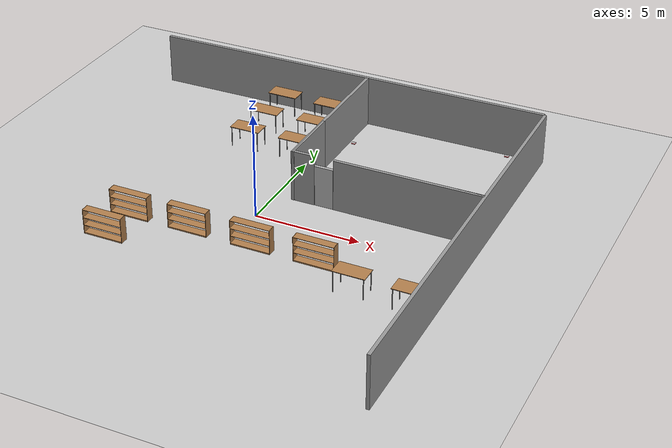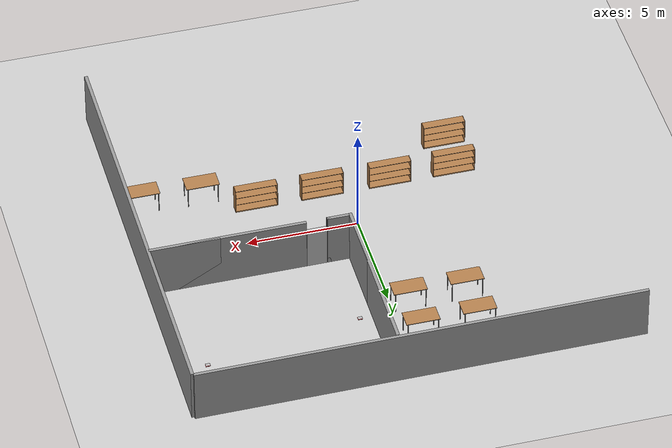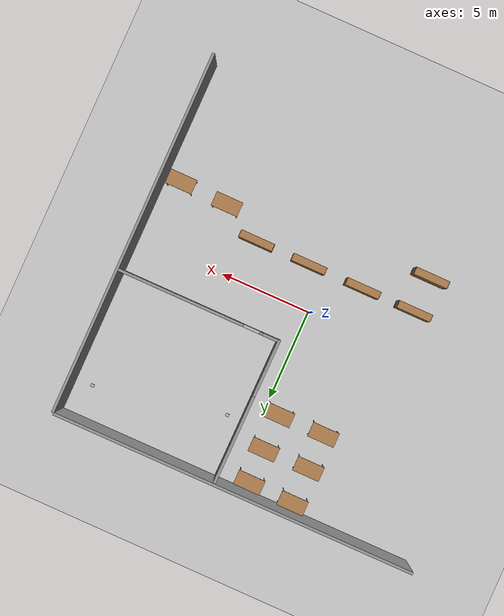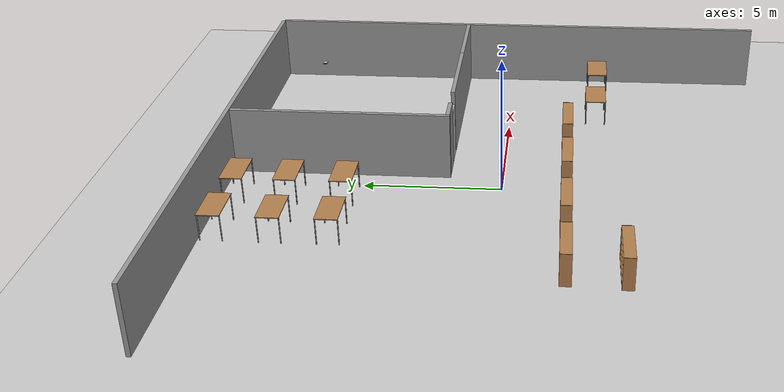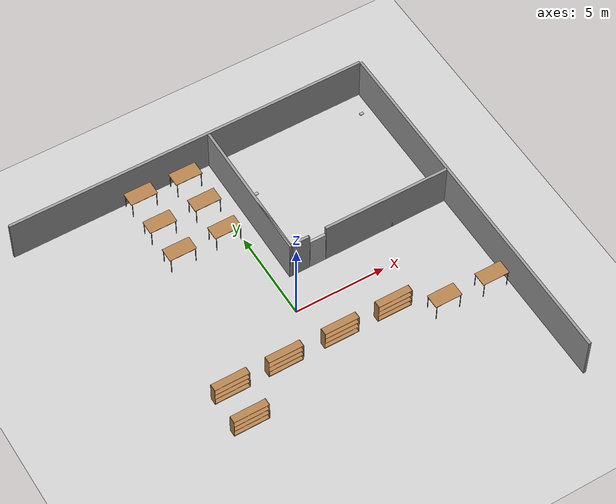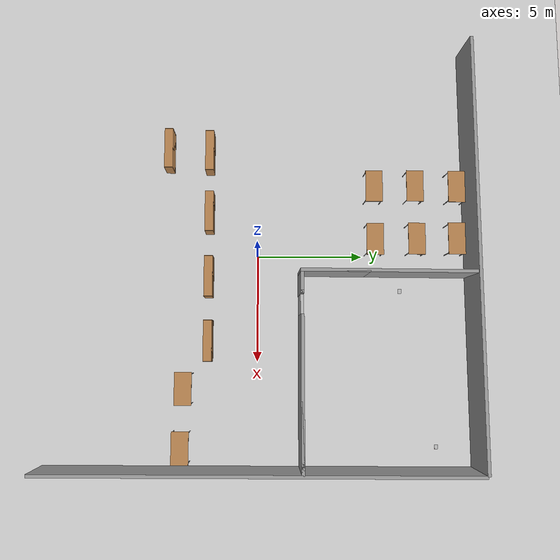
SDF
<sdf version="1.7">
 <world name="default">
  <model name="ground_plane">
   <static>1</static>
   <link name="link">
    <collision name="collision">
     <geometry><plane><normal>0 0 1</normal><size>100 100</size></plane></geometry>
     <surface>
      <contact><collide_bitmask>65535</collide_bitmask></contact>
      <friction><ode><mu>100</mu><mu2>50</mu2></ode></friction>
     </surface>
    </collision>
    <visual name="visual">
     <cast_shadows>0</cast_shadows>
     <geometry><plane><normal>0 0 1</normal><size>100 100</size></plane></geometry>
     <material>
      <script><uri>file://media/materials/scripts/gazebo.material</uri><name>Gazebo/Grey</name></script>
     </material>
    </visual>
   </link>
  </model>
  <model name="wall_20m">
   <pose>10.3668 0.002945 0 0 -0 0</pose>
   <link name="Wall_0">
    <collision name="Wall_0_Collision">
     <geometry><box><size>20 0.15 2.5</size></box></geometry>
     <pose>0 0 1.25 0 -0 0</pose>
    </collision>
    <visual name="Wall_0_Visual">
     <pose>0 0 1.25 0 -0 0</pose>
     <geometry><box><size>20 0.15 2.5</size></box></geometry>
     <material>
      <script><uri>file://media/materials/scripts/gazebo.material</uri><name>Gazebo/Grey</name></script>
      <ambient>1 1 1 1</ambient>
     </material>
     <meta><layer>0</layer></meta>
    </visual>
    <pose>-0.482276 -0 0 0 -0 1.5708</pose>
   </link>
   <static>1</static>
  </model>
  <model name="wall_20m_0">
   <pose>-0.159869 9.52923 0 0 0 -1.56837</pose>
   <link name="Wall_0">
    <collision name="Wall_0_Collision">
     <geometry><box><size>20 0.15 2.5</size></box></geometry>
     <pose>0 0 1.25 0 -0 0</pose>
    </collision>
    <visual name="Wall_0_Visual">
     <pose>0 0 1.25 0 -0 0</pose>
     <geometry><box><size>20 0.15 2.5</size></box></geometry>
     <material>
      <script><uri>file://media/materials/scripts/gazebo.material</uri><name>Gazebo/Grey</name></script>
      <ambient>1 1 1 1</ambient>
     </material>
     <meta><layer>0</layer></meta>
    </visual>
    <pose>-0.482276 -0 0 0 -0 1.5708</pose>
   </link>
   <static>1</static>
  </model>
  <model name="door_1_0">
   <link name="link_0">
    <visual name="visual">
     <pose>0 0 1 0 -0 0</pose>
     <geometry><box><size>0.9 0.15 2</size></box></geometry>
     <material>
      <script>
       <uri>model://door/materials/scripts</uri>
       <uri>model://door/materials/textures</uri>
       <name>door</name>
      </script>
     </material>
    </visual>
    <collision name="collision">
     <pose>0 0 1 0 -0 0</pose>
     <geometry><box><size>0.9 0.15 2</size></box></geometry>
    </collision>
   </link>
   <static>1</static>
   <pose>2.39581 2.01305 0.003522 0 -0 0</pose>
  </model>
  <model name="wall_1m">
   <pose>1.43654 2.00733 0 0 -0 0</pose>
   <link name="Wall_0">
    <collision name="Wall_0_Collision">
     <geometry><box><size>0.16 0.15 2.5</size></box></geometry>
     <pose>0 0 1.25 0 -0 0</pose>
    </collision>
    <visual name="Wall_0_Visual">
     <pose>0 0 1.25 0 -0 0</pose>
     <geometry><box><size>0.16 0.15 2.5</size></box></geometry>
     <material>
      <script><uri>file://media/materials/scripts/gazebo.material</uri><name>Gazebo/Grey</name></script>
      <ambient>1 1 1 1</ambient>
     </material>
     <meta><layer>0</layer></meta>
    </visual>
    <pose>0.42 0 0 0 -0 0</pose>
   </link>
   <link name="Wall_1">
    <collision name="Wall_1_Collision">
     <geometry><box><size>1 0.15 2.5</size></box></geometry>
     <pose>0 0 1.25 0 -0 0</pose>
    </collision>
    <visual name="Wall_1_Visual">
     <pose>0 0 1.25 0 -0 0</pose>
     <geometry><box><size>1 0.15 2.5</size></box></geometry>
     <material>
      <script><uri>file://media/materials/scripts/gazebo.material</uri><name>Gazebo/Grey</name></script>
      <ambient>1 1 1 1</ambient>
     </material>
     <meta><layer>0</layer></meta>
    </visual>
    <pose>0 0 0 0 -0 3.14159</pose>
   </link>
   <static>1</static>
  </model>
  <model name="wall_7m_0">
   <pose>6.35669 2.00921 0 0 -0 0</pose>
   <link name="Wall_0">
    <collision name="Wall_0_Collision">
     <geometry><box><size>3.16 0.15 2.5</size></box></geometry>
     <pose>0 0 1.25 0 -0 0</pose>
    </collision>
    <visual name="Wall_0_Visual">
     <pose>0 0 1.25 0 -0 0</pose>
     <geometry><box><size>3.16 0.15 2.5</size></box></geometry>
     <material>
      <script><uri>file://media/materials/scripts/gazebo.material</uri><name>Gazebo/Grey</name></script>
      <ambient>1 1 1 1</ambient>
     </material>
     <meta><layer>0</layer></meta>
    </visual>
    <pose>1.92 0 0 0 -0 0</pose>
   </link>
   <link name="Wall_1">
    <collision name="Wall_1_Collision">
     <geometry><box><size>7 0.15 2.5</size></box></geometry>
     <pose>0 0 1.25 0 -0 0</pose>
    </collision>
    <visual name="Wall_1_Visual">
     <pose>0 0 1.25 0 -0 0</pose>
     <geometry><box><size>7 0.15 2.5</size></box></geometry>
     <material>
      <script><uri>file://media/materials/scripts/gazebo.material</uri><name>Gazebo/Grey</name></script>
      <ambient>1 1 1 1</ambient>
     </material>
     <meta><layer>0</layer></meta>
    </visual>
    <pose>0 0 0 0 -0 3.14159</pose>
   </link>
   <static>1</static>
  </model>
  <model name="bookshelf_twosided_6">
   <static>1</static>
   <link name="link">
    <inertial><mass>1</mass></inertial>
    <collision name="left_side">
     <pose>0.95 -0.195 0.6 0 -0 0</pose>
     <geometry><box><size>0.02 0.4 1.2</size></box></geometry>
    </collision>
    <visual name="left_side">
     <pose>0.95 -0.195 0.6 0 -0 0</pose>
     <geometry><box><size>0.02 0.4 1.2</size></box></geometry>
     <material>
      <script><uri>file://media/materials/scripts/gazebo.material</uri><name>Gazebo/Wood</name></script>
     </material>
    </visual>
    <collision name="right_side">
     <pose>-0.95 -0.195 0.6 0 -0 0</pose>
     <geometry><box><size>0.02 0.4 1.2</size></box></geometry>
    </collision>
    <visual name="right_side">
     <pose>-0.95 -0.195 0.6 0 -0 0</pose>
     <geometry><box><size>0.02 0.4 1.2</size></box></geometry>
     <material>
      <script><uri>file://media/materials/scripts/gazebo.material</uri><name>Gazebo/Wood</name></script>
     </material>
    </visual>
    <collision name="bottom">
     <pose>0 -0.195 0.03 0 -0 0</pose>
     <geometry><box><size>1.88 0.4 0.06</size></box></geometry>
    </collision>
    <visual name="bottom">
     <pose>0 -0.195 0.03 0 -0 0</pose>
     <geometry><box><size>1.88 0.4 0.06</size></box></geometry>
     <material>
      <script><uri>file://media/materials/scripts/gazebo.material</uri><name>Gazebo/Wood</name></script>
     </material>
    </visual>
    <collision name="top">
     <pose>0 -0.195 1.19 0 -0 0</pose>
     <geometry><box><size>1.88 0.4 0.02</size></box></geometry>
    </collision>
    <visual name="top">
     <pose>0 -0.195 1.19 0 -0 0</pose>
     <geometry><box><size>1.88 0.4 0.02</size></box></geometry>
     <material>
      <script><uri>file://media/materials/scripts/gazebo.material</uri><name>Gazebo/Wood</name></script>
     </material>
    </visual>
    <collision name="low_shelf">
     <pose>0 -0.195 0.43 0 -0 0</pose>
     <geometry><box><size>1.88 0.4 0.02</size></box></geometry>
    </collision>
    <visual name="low_shelf">
     <pose>0 -0.195 0.43 0 -0 0</pose>
     <geometry><box><size>1.88 0.4 0.02</size></box></geometry>
     <material>
      <script><uri>file://media/materials/scripts/gazebo.material</uri><name>Gazebo/Wood</name></script>
     </material>
    </visual>
    <collision name="high_shelf">
     <pose>0 -0.195 0.8 0 -0 0</pose>
     <geometry><box><size>1.88 0.4 0.02</size></box></geometry>
    </collision>
    <visual name="high_shelf">
     <pose>0 -0.195 0.8 0 -0 0</pose>
     <geometry><box><size>1.88 0.4 0.02</size></box></geometry>
     <material>
      <script><uri>file://media/materials/scripts/gazebo.material</uri><name>Gazebo/Wood</name></script>
     </material>
    </visual>
   </link>
   <pose>-5.09321 -4.07593 0 0 -0 0</pose>
  </model>
  <model name="bookshelf_twosided_9">
   <static>1</static>
   <link name="link">
    <inertial><mass>1</mass></inertial>
    <collision name="left_side">
     <pose>0.95 -0.195 0.6 0 -0 0</pose>
     <geometry><box><size>0.02 0.4 1.2</size></box></geometry>
    </collision>
    <visual name="left_side">
     <pose>0.95 -0.195 0.6 0 -0 0</pose>
     <geometry><box><size>0.02 0.4 1.2</size></box></geometry>
     <material>
      <script><uri>file://media/materials/scripts/gazebo.material</uri><name>Gazebo/Wood</name></script>
     </material>
    </visual>
    <collision name="right_side">
     <pose>-0.95 -0.195 0.6 0 -0 0</pose>
     <geometry><box><size>0.02 0.4 1.2</size></box></geometry>
    </collision>
    <visual name="right_side">
     <pose>-0.95 -0.195 0.6 0 -0 0</pose>
     <geometry><box><size>0.02 0.4 1.2</size></box></geometry>
     <material>
      <script><uri>file://media/materials/scripts/gazebo.material</uri><name>Gazebo/Wood</name></script>
     </material>
    </visual>
    <collision name="bottom">
     <pose>0 -0.195 0.03 0 -0 0</pose>
     <geometry><box><size>1.88 0.4 0.06</size></box></geometry>
    </collision>
    <visual name="bottom">
     <pose>0 -0.195 0.03 0 -0 0</pose>
     <geometry><box><size>1.88 0.4 0.06</size></box></geometry>
     <material>
      <script><uri>file://media/materials/scripts/gazebo.material</uri><name>Gazebo/Wood</name></script>
     </material>
    </visual>
    <collision name="top">
     <pose>0 -0.195 1.19 0 -0 0</pose>
     <geometry><box><size>1.88 0.4 0.02</size></box></geometry>
    </collision>
    <visual name="top">
     <pose>0 -0.195 1.19 0 -0 0</pose>
     <geometry><box><size>1.88 0.4 0.02</size></box></geometry>
     <material>
      <script><uri>file://media/materials/scripts/gazebo.material</uri><name>Gazebo/Wood</name></script>
     </material>
    </visual>
    <collision name="low_shelf">
     <pose>0 -0.195 0.43 0 -0 0</pose>
     <geometry><box><size>1.88 0.4 0.02</size></box></geometry>
    </collision>
    <visual name="low_shelf">
     <pose>0 -0.195 0.43 0 -0 0</pose>
     <geometry><box><size>1.88 0.4 0.02</size></box></geometry>
     <material>
      <script><uri>file://media/materials/scripts/gazebo.material</uri><name>Gazebo/Wood</name></script>
     </material>
    </visual>
    <collision name="high_shelf">
     <pose>0 -0.195 0.8 0 -0 0</pose>
     <geometry><box><size>1.88 0.4 0.02</size></box></geometry>
    </collision>
    <visual name="high_shelf">
     <pose>0 -0.195 0.8 0 -0 0</pose>
     <geometry><box><size>1.88 0.4 0.02</size></box></geometry>
     <material>
      <script><uri>file://media/materials/scripts/gazebo.material</uri><name>Gazebo/Wood</name></script>
     </material>
    </visual>
   </link>
   <pose>-4.99287 -2.11922 0 0 -0 0</pose>
  </model>
  <model name="bookshelf_twosided_10">
   <static>1</static>
   <link name="link">
    <inertial><mass>1</mass></inertial>
    <collision name="left_side">
     <pose>0.95 -0.195 0.6 0 -0 0</pose>
     <geometry><box><size>0.02 0.4 1.2</size></box></geometry>
    </collision>
    <visual name="left_side">
     <pose>0.95 -0.195 0.6 0 -0 0</pose>
     <geometry><box><size>0.02 0.4 1.2</size></box></geometry>
     <material>
      <script><uri>file://media/materials/scripts/gazebo.material</uri><name>Gazebo/Wood</name></script>
     </material>
    </visual>
    <collision name="right_side">
     <pose>-0.95 -0.195 0.6 0 -0 0</pose>
     <geometry><box><size>0.02 0.4 1.2</size></box></geometry>
    </collision>
    <visual name="right_side">
     <pose>-0.95 -0.195 0.6 0 -0 0</pose>
     <geometry><box><size>0.02 0.4 1.2</size></box></geometry>
     <material>
      <script><uri>file://media/materials/scripts/gazebo.material</uri><name>Gazebo/Wood</name></script>
     </material>
    </visual>
    <collision name="bottom">
     <pose>0 -0.195 0.03 0 -0 0</pose>
     <geometry><box><size>1.88 0.4 0.06</size></box></geometry>
    </collision>
    <visual name="bottom">
     <pose>0 -0.195 0.03 0 -0 0</pose>
     <geometry><box><size>1.88 0.4 0.06</size></box></geometry>
     <material>
      <script><uri>file://media/materials/scripts/gazebo.material</uri><name>Gazebo/Wood</name></script>
     </material>
    </visual>
    <collision name="top">
     <pose>0 -0.195 1.19 0 -0 0</pose>
     <geometry><box><size>1.88 0.4 0.02</size></box></geometry>
    </collision>
    <visual name="top">
     <pose>0 -0.195 1.19 0 -0 0</pose>
     <geometry><box><size>1.88 0.4 0.02</size></box></geometry>
     <material>
      <script><uri>file://media/materials/scripts/gazebo.material</uri><name>Gazebo/Wood</name></script>
     </material>
    </visual>
    <collision name="low_shelf">
     <pose>0 -0.195 0.43 0 -0 0</pose>
     <geometry><box><size>1.88 0.4 0.02</size></box></geometry>
    </collision>
    <visual name="low_shelf">
     <pose>0 -0.195 0.43 0 -0 0</pose>
     <geometry><box><size>1.88 0.4 0.02</size></box></geometry>
     <material>
      <script><uri>file://media/materials/scripts/gazebo.material</uri><name>Gazebo/Wood</name></script>
     </material>
    </visual>
    <collision name="high_shelf">
     <pose>0 -0.195 0.8 0 -0 0</pose>
     <geometry><box><size>1.88 0.4 0.02</size></box></geometry>
    </collision>
    <visual name="high_shelf">
     <pose>0 -0.195 0.8 0 -0 0</pose>
     <geometry><box><size>1.88 0.4 0.02</size></box></geometry>
     <material>
      <script><uri>file://media/materials/scripts/gazebo.material</uri><name>Gazebo/Wood</name></script>
     </material>
    </visual>
   </link>
   <pose>-2.05301 -2.11044 0 0 -0 0</pose>
  </model>
  <model name="biscuit_box">
   <link name="link">
    <pose>0 0 0.025 0 -0 0</pose>
    <visual name="visual">
     <geometry><box><size>0.2 0.15 0.05</size></box></geometry>
     <material>
      <ambient>0.423 0.019 0.035 1</ambient>
      <diffuse>0.423 0.019 0.035 1</diffuse>
      <specular>0.01 0.01 0.01 1</specular>
      <emissive>0 0 0 1</emissive>
     </material>
    </visual>
    <collision name="collision"><geometry><box><size>0.1 0.1 0.15</size></box></geometry></collision>
   </link>
   <link name="link_1">
    <pose>0 0 0.05 0 -0 0</pose>
    <visual name="visual">
     <geometry><box><size>0.2 0.15 0.001</size></box></geometry>
     <material>
      <script>
       <uri>model://biscuit_box/materials/scripts</uri>
       <uri>model://biscuit_box/materials/textures</uri>
       <name>biscuit_pat</name>
      </script>
     </material>
    </visual>
    <collision name="collision"><geometry><box><size>0.1 0.1 0.15</size></box></geometry></collision>
   </link>
   <static>1</static>
   <pose>8.7753 8.10875 1.0005 0 -0 0</pose>
  </model>
  <model name="biscuit_box_0">
   <link name="link">
    <pose>0 0 0.025 0 -0 0</pose>
    <visual name="visual">
     <geometry><box><size>0.2 0.15 0.05</size></box></geometry>
     <material>
      <ambient>0.423 0.019 0.035 1</ambient>
      <diffuse>0.423 0.019 0.035 1</diffuse>
      <specular>0.01 0.01 0.01 1</specular>
      <emissive>0 0 0 1</emissive>
     </material>
    </visual>
    <collision name="collision"><geometry><box><size>0.1 0.1 0.15</size></box></geometry></collision>
   </link>
   <link name="link_1">
    <pose>0 0 0.05 0 -0 0</pose>
    <visual name="visual">
     <geometry><box><size>0.2 0.15 0.001</size></box></geometry>
     <material>
      <script>
       <uri>model://biscuit_box/materials/scripts</uri>
       <uri>model://biscuit_box/materials/textures</uri>
       <name>biscuit_pat</name>
      </script>
     </material>
    </visual>
    <collision name="collision"><geometry><box><size>0.1 0.1 0.15</size></box></geometry></collision>
   </link>
   <static>1</static>
   <pose>1.7066 6.66984 0.707256 0 -0 0</pose>
  </model>
  <model name="wall_8m">
   <pose>0.894817 5.92497 0 0 0 -1.5771</pose>
   <link name="Wall_0">
    <collision name="Wall_0_Collision">
     <geometry><box><size>3.16 0.15 2.5</size></box></geometry>
     <pose>0 0 1.25 0 -0 0</pose>
    </collision>
    <visual name="Wall_0_Visual">
     <pose>0 0 1.25 0 -0 0</pose>
     <geometry><box><size>3.16 0.15 2.5</size></box></geometry>
     <material>
      <script><uri>file://media/materials/scripts/gazebo.material</uri><name>Gazebo/Grey</name></script>
      <ambient>1 1 1 1</ambient>
     </material>
     <meta><layer>0</layer></meta>
    </visual>
    <pose>2.42 0 0 0 -0 0</pose>
   </link>
   <link name="Wall_1">
    <collision name="Wall_1_Collision">
     <geometry><box><size>8 0.15 2.5</size></box></geometry>
     <pose>0 0 1.25 0 -0 0</pose>
    </collision>
    <visual name="Wall_1_Visual">
     <pose>0 0 1.25 0 -0 0</pose>
     <geometry><box><size>8 0.15 2.5</size></box></geometry>
     <material>
      <script><uri>file://media/materials/scripts/gazebo.material</uri><name>Gazebo/Grey</name></script>
      <ambient>1 1 1 1</ambient>
     </material>
     <meta><layer>0</layer></meta>
    </visual>
    <pose>0 0 0 0 -0 3.14159</pose>
   </link>
   <static>1</static>
  </model>
  <model name="table_clone_1">
   <static>1</static>
   <link name="link">
    <collision name="surface">
     <pose>0 0 1 0 -0 0</pose>
     <geometry><box><size>1.5 0.8 0.03</size></box></geometry>
     <surface><friction><ode><mu>0.6</mu><mu2>0.6</mu2></ode></friction></surface>
    </collision>
    <visual name="visual1">
     <pose>0 0 1 0 -0 0</pose>
     <geometry><box><size>1.5 0.8 0.03</size></box></geometry>
     <material>
      <script><uri>file://media/materials/scripts/gazebo.material</uri><name>Gazebo/Wood</name></script>
     </material>
    </visual>
    <collision name="front_left_leg">
     <pose>0.68 0.38 0.5 0 -0 0</pose>
     <geometry><cylinder><radius>0.02</radius><length>1</length></cylinder></geometry>
    </collision>
    <visual name="front_left_leg">
     <pose>0.68 0.38 0.5 0 -0 0</pose>
     <geometry><cylinder><radius>0.02</radius><length>1</length></cylinder></geometry>
     <material>
      <script><uri>file://media/materials/scripts/gazebo.material</uri><name>Gazebo/Grey</name></script>
     </material>
    </visual>
    <collision name="front_right_leg">
     <pose>0.68 -0.38 0.5 0 -0 0</pose>
     <geometry><cylinder><radius>0.02</radius><length>1</length></cylinder></geometry>
    </collision>
    <visual name="front_right_leg">
     <pose>0.68 -0.38 0.5 0 -0 0</pose>
     <geometry><cylinder><radius>0.02</radius><length>1</length></cylinder></geometry>
     <material>
      <script><uri>file://media/materials/scripts/gazebo.material</uri><name>Gazebo/Grey</name></script>
     </material>
    </visual>
    <collision name="back_right_leg">
     <pose>-0.68 -0.38 0.5 0 -0 0</pose>
     <geometry><cylinder><radius>0.02</radius><length>1</length></cylinder></geometry>
    </collision>
    <visual name="back_right_leg">
     <pose>-0.68 -0.38 0.5 0 -0 0</pose>
     <geometry><cylinder><radius>0.02</radius><length>1</length></cylinder></geometry>
     <material>
      <script><uri>file://media/materials/scripts/gazebo.material</uri><name>Gazebo/Grey</name></script>
     </material>
    </visual>
    <collision name="back_left_leg">
     <pose>-0.68 0.38 0.5 0 -0 0</pose>
     <geometry><cylinder><radius>0.02</radius><length>1</length></cylinder></geometry>
    </collision>
    <visual name="back_left_leg">
     <pose>-0.68 0.38 0.5 0 -0 0</pose>
     <geometry><cylinder><radius>0.02</radius><length>1</length></cylinder></geometry>
     <material>
      <script><uri>file://media/materials/scripts/gazebo.material</uri><name>Gazebo/Grey</name></script>
     </material>
    </visual>
   </link>
   <pose>-3.30649 5.52697 0 0 -0 3.13908</pose>
  </model>
  <model name="table_clone_2">
   <static>1</static>
   <link name="link">
    <collision name="surface">
     <pose>0 0 1 0 -0 0</pose>
     <geometry><box><size>1.5 0.8 0.03</size></box></geometry>
     <surface><friction><ode><mu>0.6</mu><mu2>0.6</mu2></ode></friction></surface>
    </collision>
    <visual name="visual1">
     <pose>0 0 1 0 -0 0</pose>
     <geometry><box><size>1.5 0.8 0.03</size></box></geometry>
     <material>
      <script><uri>file://media/materials/scripts/gazebo.material</uri><name>Gazebo/Wood</name></script>
     </material>
    </visual>
    <collision name="front_left_leg">
     <pose>0.68 0.38 0.5 0 -0 0</pose>
     <geometry><cylinder><radius>0.02</radius><length>1</length></cylinder></geometry>
    </collision>
    <visual name="front_left_leg">
     <pose>0.68 0.38 0.5 0 -0 0</pose>
     <geometry><cylinder><radius>0.02</radius><length>1</length></cylinder></geometry>
     <material>
      <script><uri>file://media/materials/scripts/gazebo.material</uri><name>Gazebo/Grey</name></script>
     </material>
    </visual>
    <collision name="front_right_leg">
     <pose>0.68 -0.38 0.5 0 -0 0</pose>
     <geometry><cylinder><radius>0.02</radius><length>1</length></cylinder></geometry>
    </collision>
    <visual name="front_right_leg">
     <pose>0.68 -0.38 0.5 0 -0 0</pose>
     <geometry><cylinder><radius>0.02</radius><length>1</length></cylinder></geometry>
     <material>
      <script><uri>file://media/materials/scripts/gazebo.material</uri><name>Gazebo/Grey</name></script>
     </material>
    </visual>
    <collision name="back_right_leg">
     <pose>-0.68 -0.38 0.5 0 -0 0</pose>
     <geometry><cylinder><radius>0.02</radius><length>1</length></cylinder></geometry>
    </collision>
    <visual name="back_right_leg">
     <pose>-0.68 -0.38 0.5 0 -0 0</pose>
     <geometry><cylinder><radius>0.02</radius><length>1</length></cylinder></geometry>
     <material>
      <script><uri>file://media/materials/scripts/gazebo.material</uri><name>Gazebo/Grey</name></script>
     </material>
    </visual>
    <collision name="back_left_leg">
     <pose>-0.68 0.38 0.5 0 -0 0</pose>
     <geometry><cylinder><radius>0.02</radius><length>1</length></cylinder></geometry>
    </collision>
    <visual name="back_left_leg">
     <pose>-0.68 0.38 0.5 0 -0 0</pose>
     <geometry><cylinder><radius>0.02</radius><length>1</length></cylinder></geometry>
     <material>
      <script><uri>file://media/materials/scripts/gazebo.material</uri><name>Gazebo/Grey</name></script>
     </material>
    </visual>
   </link>
   <pose>-3.31766 7.47222 0 0 -0 3.13908</pose>
  </model>
  <model name="table_clone_3">
   <static>1</static>
   <link name="link">
    <collision name="surface">
     <pose>0 0 1 0 -0 0</pose>
     <geometry><box><size>1.5 0.8 0.03</size></box></geometry>
     <surface><friction><ode><mu>0.6</mu><mu2>0.6</mu2></ode></friction></surface>
    </collision>
    <visual name="visual1">
     <pose>0 0 1 0 -0 0</pose>
     <geometry><box><size>1.5 0.8 0.03</size></box></geometry>
     <material>
      <script><uri>file://media/materials/scripts/gazebo.material</uri><name>Gazebo/Wood</name></script>
     </material>
    </visual>
    <collision name="front_left_leg">
     <pose>0.68 0.38 0.5 0 -0 0</pose>
     <geometry><cylinder><radius>0.02</radius><length>1</length></cylinder></geometry>
    </collision>
    <visual name="front_left_leg">
     <pose>0.68 0.38 0.5 0 -0 0</pose>
     <geometry><cylinder><radius>0.02</radius><length>1</length></cylinder></geometry>
     <material>
      <script><uri>file://media/materials/scripts/gazebo.material</uri><name>Gazebo/Grey</name></script>
     </material>
    </visual>
    <collision name="front_right_leg">
     <pose>0.68 -0.38 0.5 0 -0 0</pose>
     <geometry><cylinder><radius>0.02</radius><length>1</length></cylinder></geometry>
    </collision>
    <visual name="front_right_leg">
     <pose>0.68 -0.38 0.5 0 -0 0</pose>
     <geometry><cylinder><radius>0.02</radius><length>1</length></cylinder></geometry>
     <material>
      <script><uri>file://media/materials/scripts/gazebo.material</uri><name>Gazebo/Grey</name></script>
     </material>
    </visual>
    <collision name="back_right_leg">
     <pose>-0.68 -0.38 0.5 0 -0 0</pose>
     <geometry><cylinder><radius>0.02</radius><length>1</length></cylinder></geometry>
    </collision>
    <visual name="back_right_leg">
     <pose>-0.68 -0.38 0.5 0 -0 0</pose>
     <geometry><cylinder><radius>0.02</radius><length>1</length></cylinder></geometry>
     <material>
      <script><uri>file://media/materials/scripts/gazebo.material</uri><name>Gazebo/Grey</name></script>
     </material>
    </visual>
    <collision name="back_left_leg">
     <pose>-0.68 0.38 0.5 0 -0 0</pose>
     <geometry><cylinder><radius>0.02</radius><length>1</length></cylinder></geometry>
    </collision>
    <visual name="back_left_leg">
     <pose>-0.68 0.38 0.5 0 -0 0</pose>
     <geometry><cylinder><radius>0.02</radius><length>1</length></cylinder></geometry>
     <material>
      <script><uri>file://media/materials/scripts/gazebo.material</uri><name>Gazebo/Grey</name></script>
     </material>
    </visual>
   </link>
   <pose>-3.29329 9.45341 0 0 -0 3.13908</pose>
  </model>
  <model name="table_clone_4">
   <static>1</static>
   <link name="link">
    <collision name="surface">
     <pose>0 0 1 0 -0 0</pose>
     <geometry><box><size>1.5 0.8 0.03</size></box></geometry>
     <surface><friction><ode><mu>0.6</mu><mu2>0.6</mu2></ode></friction></surface>
    </collision>
    <visual name="visual1">
     <pose>0 0 1 0 -0 0</pose>
     <geometry><box><size>1.5 0.8 0.03</size></box></geometry>
     <material>
      <script><uri>file://media/materials/scripts/gazebo.material</uri><name>Gazebo/Wood</name></script>
     </material>
    </visual>
    <collision name="front_left_leg">
     <pose>0.68 0.38 0.5 0 -0 0</pose>
     <geometry><cylinder><radius>0.02</radius><length>1</length></cylinder></geometry>
    </collision>
    <visual name="front_left_leg">
     <pose>0.68 0.38 0.5 0 -0 0</pose>
     <geometry><cylinder><radius>0.02</radius><length>1</length></cylinder></geometry>
     <material>
      <script><uri>file://media/materials/scripts/gazebo.material</uri><name>Gazebo/Grey</name></script>
     </material>
    </visual>
    <collision name="front_right_leg">
     <pose>0.68 -0.38 0.5 0 -0 0</pose>
     <geometry><cylinder><radius>0.02</radius><length>1</length></cylinder></geometry>
    </collision>
    <visual name="front_right_leg">
     <pose>0.68 -0.38 0.5 0 -0 0</pose>
     <geometry><cylinder><radius>0.02</radius><length>1</length></cylinder></geometry>
     <material>
      <script><uri>file://media/materials/scripts/gazebo.material</uri><name>Gazebo/Grey</name></script>
     </material>
    </visual>
    <collision name="back_right_leg">
     <pose>-0.68 -0.38 0.5 0 -0 0</pose>
     <geometry><cylinder><radius>0.02</radius><length>1</length></cylinder></geometry>
    </collision>
    <visual name="back_right_leg">
     <pose>-0.68 -0.38 0.5 0 -0 0</pose>
     <geometry><cylinder><radius>0.02</radius><length>1</length></cylinder></geometry>
     <material>
      <script><uri>file://media/materials/scripts/gazebo.material</uri><name>Gazebo/Grey</name></script>
     </material>
    </visual>
    <collision name="back_left_leg">
     <pose>-0.68 0.38 0.5 0 -0 0</pose>
     <geometry><cylinder><radius>0.02</radius><length>1</length></cylinder></geometry>
    </collision>
    <visual name="back_left_leg">
     <pose>-0.68 0.38 0.5 0 -0 0</pose>
     <geometry><cylinder><radius>0.02</radius><length>1</length></cylinder></geometry>
     <material>
      <script><uri>file://media/materials/scripts/gazebo.material</uri><name>Gazebo/Grey</name></script>
     </material>
    </visual>
   </link>
   <pose>-0.762303 5.5358 0 0 -0 3.13908</pose>
  </model>
  <model name="table_clone_5">
   <static>1</static>
   <link name="link">
    <collision name="surface">
     <pose>0 0 1 0 -0 0</pose>
     <geometry><box><size>1.5 0.8 0.03</size></box></geometry>
     <surface><friction><ode><mu>0.6</mu><mu2>0.6</mu2></ode></friction></surface>
    </collision>
    <visual name="visual1">
     <pose>0 0 1 0 -0 0</pose>
     <geometry><box><size>1.5 0.8 0.03</size></box></geometry>
     <material>
      <script><uri>file://media/materials/scripts/gazebo.material</uri><name>Gazebo/Wood</name></script>
     </material>
    </visual>
    <collision name="front_left_leg">
     <pose>0.68 0.38 0.5 0 -0 0</pose>
     <geometry><cylinder><radius>0.02</radius><length>1</length></cylinder></geometry>
    </collision>
    <visual name="front_left_leg">
     <pose>0.68 0.38 0.5 0 -0 0</pose>
     <geometry><cylinder><radius>0.02</radius><length>1</length></cylinder></geometry>
     <material>
      <script><uri>file://media/materials/scripts/gazebo.material</uri><name>Gazebo/Grey</name></script>
     </material>
    </visual>
    <collision name="front_right_leg">
     <pose>0.68 -0.38 0.5 0 -0 0</pose>
     <geometry><cylinder><radius>0.02</radius><length>1</length></cylinder></geometry>
    </collision>
    <visual name="front_right_leg">
     <pose>0.68 -0.38 0.5 0 -0 0</pose>
     <geometry><cylinder><radius>0.02</radius><length>1</length></cylinder></geometry>
     <material>
      <script><uri>file://media/materials/scripts/gazebo.material</uri><name>Gazebo/Grey</name></script>
     </material>
    </visual>
    <collision name="back_right_leg">
     <pose>-0.68 -0.38 0.5 0 -0 0</pose>
     <geometry><cylinder><radius>0.02</radius><length>1</length></cylinder></geometry>
    </collision>
    <visual name="back_right_leg">
     <pose>-0.68 -0.38 0.5 0 -0 0</pose>
     <geometry><cylinder><radius>0.02</radius><length>1</length></cylinder></geometry>
     <material>
      <script><uri>file://media/materials/scripts/gazebo.material</uri><name>Gazebo/Grey</name></script>
     </material>
    </visual>
    <collision name="back_left_leg">
     <pose>-0.68 0.38 0.5 0 -0 0</pose>
     <geometry><cylinder><radius>0.02</radius><length>1</length></cylinder></geometry>
    </collision>
    <visual name="back_left_leg">
     <pose>-0.68 0.38 0.5 0 -0 0</pose>
     <geometry><cylinder><radius>0.02</radius><length>1</length></cylinder></geometry>
     <material>
      <script><uri>file://media/materials/scripts/gazebo.material</uri><name>Gazebo/Grey</name></script>
     </material>
    </visual>
   </link>
   <pose>-0.774716 7.50629 0 0 -0 3.13908</pose>
  </model>
  <model name="table_clone_6">
   <static>1</static>
   <link name="link">
    <collision name="surface">
     <pose>0 0 1 0 -0 0</pose>
     <geometry><box><size>1.5 0.8 0.03</size></box></geometry>
     <surface><friction><ode><mu>0.6</mu><mu2>0.6</mu2></ode></friction></surface>
    </collision>
    <visual name="visual1">
     <pose>0 0 1 0 -0 0</pose>
     <geometry><box><size>1.5 0.8 0.03</size></box></geometry>
     <material>
      <script><uri>file://media/materials/scripts/gazebo.material</uri><name>Gazebo/Wood</name></script>
     </material>
    </visual>
    <collision name="front_left_leg">
     <pose>0.68 0.38 0.5 0 -0 0</pose>
     <geometry><cylinder><radius>0.02</radius><length>1</length></cylinder></geometry>
    </collision>
    <visual name="front_left_leg">
     <pose>0.68 0.38 0.5 0 -0 0</pose>
     <geometry><cylinder><radius>0.02</radius><length>1</length></cylinder></geometry>
     <material>
      <script><uri>file://media/materials/scripts/gazebo.material</uri><name>Gazebo/Grey</name></script>
     </material>
    </visual>
    <collision name="front_right_leg">
     <pose>0.68 -0.38 0.5 0 -0 0</pose>
     <geometry><cylinder><radius>0.02</radius><length>1</length></cylinder></geometry>
    </collision>
    <visual name="front_right_leg">
     <pose>0.68 -0.38 0.5 0 -0 0</pose>
     <geometry><cylinder><radius>0.02</radius><length>1</length></cylinder></geometry>
     <material>
      <script><uri>file://media/materials/scripts/gazebo.material</uri><name>Gazebo/Grey</name></script>
     </material>
    </visual>
    <collision name="back_right_leg">
     <pose>-0.68 -0.38 0.5 0 -0 0</pose>
     <geometry><cylinder><radius>0.02</radius><length>1</length></cylinder></geometry>
    </collision>
    <visual name="back_right_leg">
     <pose>-0.68 -0.38 0.5 0 -0 0</pose>
     <geometry><cylinder><radius>0.02</radius><length>1</length></cylinder></geometry>
     <material>
      <script><uri>file://media/materials/scripts/gazebo.material</uri><name>Gazebo/Grey</name></script>
     </material>
    </visual>
    <collision name="back_left_leg">
     <pose>-0.68 0.38 0.5 0 -0 0</pose>
     <geometry><cylinder><radius>0.02</radius><length>1</length></cylinder></geometry>
    </collision>
    <visual name="back_left_leg">
     <pose>-0.68 0.38 0.5 0 -0 0</pose>
     <geometry><cylinder><radius>0.02</radius><length>1</length></cylinder></geometry>
     <material>
      <script><uri>file://media/materials/scripts/gazebo.material</uri><name>Gazebo/Grey</name></script>
     </material>
    </visual>
   </link>
   <pose>-0.785479 9.39171 0 0 -0 3.13908</pose>
  </model>
  <model name="bookshelf_twosided_11_clone_0_clone">
   <static>1</static>
   <link name="link">
    <inertial><mass>1</mass></inertial>
    <collision name="left_side">
     <pose>0.95 -0.195 0.6 0 -0 0</pose>
     <geometry><box><size>0.02 0.4 1.2</size></box></geometry>
    </collision>
    <visual name="left_side">
     <pose>0.95 -0.195 0.6 0 -0 0</pose>
     <geometry><box><size>0.02 0.4 1.2</size></box></geometry>
     <material>
      <script><uri>file://media/materials/scripts/gazebo.material</uri><name>Gazebo/Wood</name></script>
     </material>
    </visual>
    <collision name="right_side">
     <pose>-0.95 -0.195 0.6 0 -0 0</pose>
     <geometry><box><size>0.02 0.4 1.2</size></box></geometry>
    </collision>
    <visual name="right_side">
     <pose>-0.95 -0.195 0.6 0 -0 0</pose>
     <geometry><box><size>0.02 0.4 1.2</size></box></geometry>
     <material>
      <script><uri>file://media/materials/scripts/gazebo.material</uri><name>Gazebo/Wood</name></script>
     </material>
    </visual>
    <collision name="bottom">
     <pose>0 -0.195 0.03 0 -0 0</pose>
     <geometry><box><size>1.88 0.4 0.06</size></box></geometry>
    </collision>
    <visual name="bottom">
     <pose>0 -0.195 0.03 0 -0 0</pose>
     <geometry><box><size>1.88 0.4 0.06</size></box></geometry>
     <material>
      <script><uri>file://media/materials/scripts/gazebo.material</uri><name>Gazebo/Wood</name></script>
     </material>
    </visual>
    <collision name="top">
     <pose>0 -0.195 1.19 0 -0 0</pose>
     <geometry><box><size>1.88 0.4 0.02</size></box></geometry>
    </collision>
    <visual name="top">
     <pose>0 -0.195 1.19 0 -0 0</pose>
     <geometry><box><size>1.88 0.4 0.02</size></box></geometry>
     <material>
      <script><uri>file://media/materials/scripts/gazebo.material</uri><name>Gazebo/Wood</name></script>
     </material>
    </visual>
    <collision name="low_shelf">
     <pose>0 -0.195 0.43 0 -0 0</pose>
     <geometry><box><size>1.88 0.4 0.02</size></box></geometry>
    </collision>
    <visual name="low_shelf">
     <pose>0 -0.195 0.43 0 -0 0</pose>
     <geometry><box><size>1.88 0.4 0.02</size></box></geometry>
     <material>
      <script><uri>file://media/materials/scripts/gazebo.material</uri><name>Gazebo/Wood</name></script>
     </material>
    </visual>
    <collision name="high_shelf">
     <pose>0 -0.195 0.8 0 -0 0</pose>
     <geometry><box><size>1.88 0.4 0.02</size></box></geometry>
    </collision>
    <visual name="high_shelf">
     <pose>0 -0.195 0.8 0 -0 0</pose>
     <geometry><box><size>1.88 0.4 0.02</size></box></geometry>
     <material>
      <script><uri>file://media/materials/scripts/gazebo.material</uri><name>Gazebo/Wood</name></script>
     </material>
    </visual>
   </link>
   <pose>1.03775 -2.50599 0 0 -0 3.13857</pose>
  </model>
  <model name="table_clone_0_clone_3">
   <static>1</static>
   <link name="link">
    <collision name="surface">
     <pose>0 0 1 0 -0 0</pose>
     <geometry><box><size>1.5 0.8 0.03</size></box></geometry>
     <surface><friction><ode><mu>0.6</mu><mu2>0.6</mu2></ode></friction></surface>
    </collision>
    <visual name="visual1">
     <pose>0 0 1 0 -0 0</pose>
     <geometry><box><size>1.5 0.8 0.03</size></box></geometry>
     <material>
      <script><uri>file://media/materials/scripts/gazebo.material</uri><name>Gazebo/Wood</name></script>
     </material>
    </visual>
    <collision name="front_left_leg">
     <pose>0.68 0.38 0.5 0 -0 0</pose>
     <geometry><cylinder><radius>0.02</radius><length>1</length></cylinder></geometry>
    </collision>
    <visual name="front_left_leg">
     <pose>0.68 0.38 0.5 0 -0 0</pose>
     <geometry><cylinder><radius>0.02</radius><length>1</length></cylinder></geometry>
     <material>
      <script><uri>file://media/materials/scripts/gazebo.material</uri><name>Gazebo/Grey</name></script>
     </material>
    </visual>
    <collision name="front_right_leg">
     <pose>0.68 -0.38 0.5 0 -0 0</pose>
     <geometry><cylinder><radius>0.02</radius><length>1</length></cylinder></geometry>
    </collision>
    <visual name="front_right_leg">
     <pose>0.68 -0.38 0.5 0 -0 0</pose>
     <geometry><cylinder><radius>0.02</radius><length>1</length></cylinder></geometry>
     <material>
      <script><uri>file://media/materials/scripts/gazebo.material</uri><name>Gazebo/Grey</name></script>
     </material>
    </visual>
    <collision name="back_right_leg">
     <pose>-0.68 -0.38 0.5 0 -0 0</pose>
     <geometry><cylinder><radius>0.02</radius><length>1</length></cylinder></geometry>
    </collision>
    <visual name="back_right_leg">
     <pose>-0.68 -0.38 0.5 0 -0 0</pose>
     <geometry><cylinder><radius>0.02</radius><length>1</length></cylinder></geometry>
     <material>
      <script><uri>file://media/materials/scripts/gazebo.material</uri><name>Gazebo/Grey</name></script>
     </material>
    </visual>
    <collision name="back_left_leg">
     <pose>-0.68 0.38 0.5 0 -0 0</pose>
     <geometry><cylinder><radius>0.02</radius><length>1</length></cylinder></geometry>
    </collision>
    <visual name="back_left_leg">
     <pose>-0.68 0.38 0.5 0 -0 0</pose>
     <geometry><cylinder><radius>0.02</radius><length>1</length></cylinder></geometry>
     <material>
      <script><uri>file://media/materials/scripts/gazebo.material</uri><name>Gazebo/Grey</name></script>
     </material>
    </visual>
   </link>
   <pose>6.2399 -3.42029 0 0 -0 3.13908</pose>
  </model>
  <model name="table_clone_0_clone_4">
   <static>1</static>
   <link name="link">
    <collision name="surface">
     <pose>0 0 1 0 -0 0</pose>
     <geometry><box><size>1.5 0.8 0.03</size></box></geometry>
     <surface><friction><ode><mu>0.6</mu><mu2>0.6</mu2></ode></friction></surface>
    </collision>
    <visual name="visual1">
     <pose>0 0 1 0 -0 0</pose>
     <geometry><box><size>1.5 0.8 0.03</size></box></geometry>
     <material>
      <script><uri>file://media/materials/scripts/gazebo.material</uri><name>Gazebo/Wood</name></script>
     </material>
    </visual>
    <collision name="front_left_leg">
     <pose>0.68 0.38 0.5 0 -0 0</pose>
     <geometry><cylinder><radius>0.02</radius><length>1</length></cylinder></geometry>
    </collision>
    <visual name="front_left_leg">
     <pose>0.68 0.38 0.5 0 -0 0</pose>
     <geometry><cylinder><radius>0.02</radius><length>1</length></cylinder></geometry>
     <material>
      <script><uri>file://media/materials/scripts/gazebo.material</uri><name>Gazebo/Grey</name></script>
     </material>
    </visual>
    <collision name="front_right_leg">
     <pose>0.68 -0.38 0.5 0 -0 0</pose>
     <geometry><cylinder><radius>0.02</radius><length>1</length></cylinder></geometry>
    </collision>
    <visual name="front_right_leg">
     <pose>0.68 -0.38 0.5 0 -0 0</pose>
     <geometry><cylinder><radius>0.02</radius><length>1</length></cylinder></geometry>
     <material>
      <script><uri>file://media/materials/scripts/gazebo.material</uri><name>Gazebo/Grey</name></script>
     </material>
    </visual>
    <collision name="back_right_leg">
     <pose>-0.68 -0.38 0.5 0 -0 0</pose>
     <geometry><cylinder><radius>0.02</radius><length>1</length></cylinder></geometry>
    </collision>
    <visual name="back_right_leg">
     <pose>-0.68 -0.38 0.5 0 -0 0</pose>
     <geometry><cylinder><radius>0.02</radius><length>1</length></cylinder></geometry>
     <material>
      <script><uri>file://media/materials/scripts/gazebo.material</uri><name>Gazebo/Grey</name></script>
     </material>
    </visual>
    <collision name="back_left_leg">
     <pose>-0.68 0.38 0.5 0 -0 0</pose>
     <geometry><cylinder><radius>0.02</radius><length>1</length></cylinder></geometry>
    </collision>
    <visual name="back_left_leg">
     <pose>-0.68 0.38 0.5 0 -0 0</pose>
     <geometry><cylinder><radius>0.02</radius><length>1</length></cylinder></geometry>
     <material>
      <script><uri>file://media/materials/scripts/gazebo.material</uri><name>Gazebo/Grey</name></script>
     </material>
    </visual>
   </link>
   <pose>8.90772 -3.51746 0 0 -0 3.13908</pose>
  </model>
  <model name="bookshelf_twosided_11_clone_0_clone_clone">
   <static>1</static>
   <link name="link">
    <inertial><mass>1</mass></inertial>
    <collision name="left_side">
     <pose>0.95 -0.195 0.6 0 -0 0</pose>
     <geometry><box><size>0.02 0.4 1.2</size></box></geometry>
    </collision>
    <visual name="left_side">
     <pose>0.95 -0.195 0.6 0 -0 0</pose>
     <geometry><box><size>0.02 0.4 1.2</size></box></geometry>
     <material>
      <script><uri>file://media/materials/scripts/gazebo.material</uri><name>Gazebo/Wood</name></script>
     </material>
    </visual>
    <collision name="right_side">
     <pose>-0.95 -0.195 0.6 0 -0 0</pose>
     <geometry><box><size>0.02 0.4 1.2</size></box></geometry>
    </collision>
    <visual name="right_side">
     <pose>-0.95 -0.195 0.6 0 -0 0</pose>
     <geometry><box><size>0.02 0.4 1.2</size></box></geometry>
     <material>
      <script><uri>file://media/materials/scripts/gazebo.material</uri><name>Gazebo/Wood</name></script>
     </material>
    </visual>
    <collision name="bottom">
     <pose>0 -0.195 0.03 0 -0 0</pose>
     <geometry><box><size>1.88 0.4 0.06</size></box></geometry>
    </collision>
    <visual name="bottom">
     <pose>0 -0.195 0.03 0 -0 0</pose>
     <geometry><box><size>1.88 0.4 0.06</size></box></geometry>
     <material>
      <script><uri>file://media/materials/scripts/gazebo.material</uri><name>Gazebo/Wood</name></script>
     </material>
    </visual>
    <collision name="top">
     <pose>0 -0.195 1.19 0 -0 0</pose>
     <geometry><box><size>1.88 0.4 0.02</size></box></geometry>
    </collision>
    <visual name="top">
     <pose>0 -0.195 1.19 0 -0 0</pose>
     <geometry><box><size>1.88 0.4 0.02</size></box></geometry>
     <material>
      <script><uri>file://media/materials/scripts/gazebo.material</uri><name>Gazebo/Wood</name></script>
     </material>
    </visual>
    <collision name="low_shelf">
     <pose>0 -0.195 0.43 0 -0 0</pose>
     <geometry><box><size>1.88 0.4 0.02</size></box></geometry>
    </collision>
    <visual name="low_shelf">
     <pose>0 -0.195 0.43 0 -0 0</pose>
     <geometry><box><size>1.88 0.4 0.02</size></box></geometry>
     <material>
      <script><uri>file://media/materials/scripts/gazebo.material</uri><name>Gazebo/Wood</name></script>
     </material>
    </visual>
    <collision name="high_shelf">
     <pose>0 -0.195 0.8 0 -0 0</pose>
     <geometry><box><size>1.88 0.4 0.02</size></box></geometry>
    </collision>
    <visual name="high_shelf">
     <pose>0 -0.195 0.8 0 -0 0</pose>
     <geometry><box><size>1.88 0.4 0.02</size></box></geometry>
     <material>
      <script><uri>file://media/materials/scripts/gazebo.material</uri><name>Gazebo/Wood</name></script>
     </material>
    </visual>
   </link>
   <pose>4.04026 -2.50617 0 0 -0 3.13857</pose>
  </model>
 </world>
</sdf>
